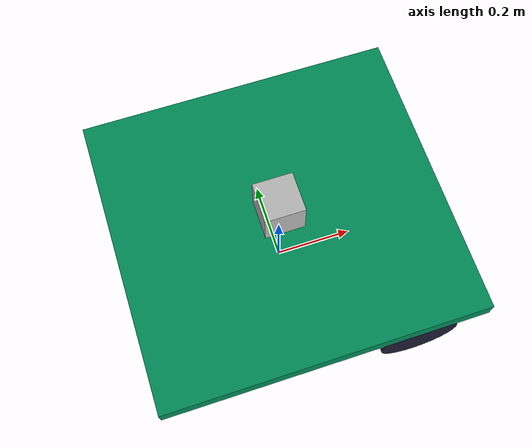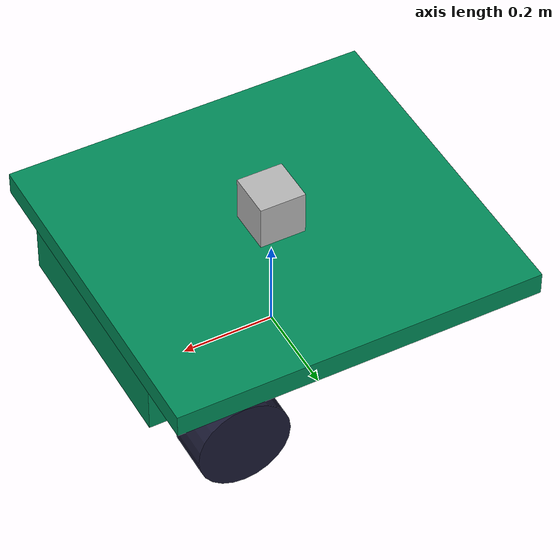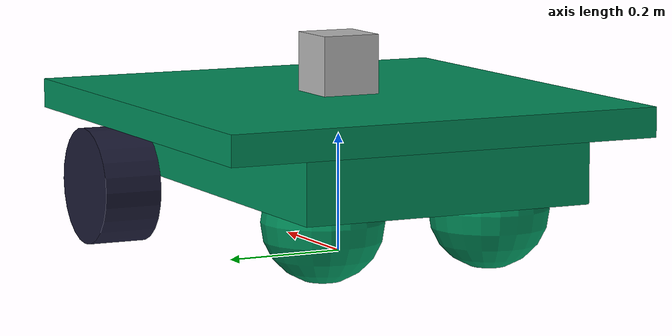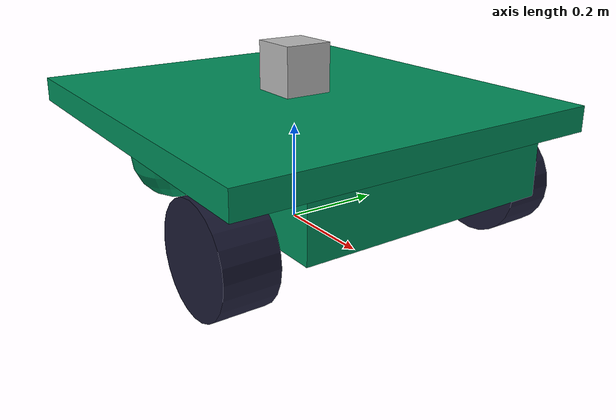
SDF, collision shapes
<?xml version="1.0" ?>
<sdf version="1.5">
  <model name="rm3_robot">
    <static>false</static>
    <link name="chassis">
      <pose>0 0 0.17 0 0 0</pose>
      <inertial>
        <mass>5.67</mass>
        <inertia>
          <ixx>0.07</ixx>
          <iyy>0.08</iyy>
          <izz>0.10</izz>
          <ixy>0</ixy>
          <ixz>0</ixz>
          <iyz>0</iyz>
        </inertia>
      </inertial>
      <collision name="collision">
        <geometry>
          <box>
            <size>0.8 0.5 0.1</size>
          </box>
        </geometry>
      </collision>
      <collision name="top_collision">
        <pose>0 0 0.075 0 0 0</pose>
        <geometry>
          <box>
            <size>0.8 0.75 0.05</size>
          </box>
        </geometry>
      </collision>
      <collision name="right_castor_collision">
        <pose>-0.25 -0.15 -0.07 0 0 0</pose>
        <geometry>
          <sphere>
            <radius>0.1</radius>
          </sphere>
        </geometry>
        <surface>
          <friction>
            <ode>
              <mu>0</mu>
              <mu2>0</mu2>
              <slip1>1.0</slip1>
              <slip2>1.0</slip2>
            </ode>
          </friction>
        </surface>
      </collision>
      <collision name="left_castor_collision">
        <pose>-0.25 0.15 -0.07 0 0 0</pose>
        <geometry>
          <sphere>
            <radius>0.1</radius>
          </sphere>
        </geometry>
        <surface>
          <friction>
            <ode>
              <mu>0</mu>
              <mu2>0</mu2>
              <slip1>1.0</slip1>
              <slip2>1.0</slip2>
            </ode>
          </friction>
        </surface>
      </collision>
      <visual name="visual">
        <geometry>
          <box>
            <size>0.8 0.5 0.1</size>
          </box>
        </geometry>
        <material>
            <ambient>0 0.55 0.35 1</ambient>
            <diffuse>0 0.55 0.35 1</diffuse>
            <specular>0 0 0 0</specular>
            <emissive>0 0 0 1</emissive>
        </material>
      </visual>
      <visual name="top_visual">
        <pose>0 0 0.075 0 0 0</pose>
        <geometry>
          <box>
            <size>0.8 0.75 0.05</size>
          </box>
        </geometry>
	<material>
            <ambient>1 1 0.4 1</ambient>
            <diffuse>1 1 0.4 1</diffuse>
            <specular>0 0 0 0</specular>
            <emissive>0 0 0 1</emissive>
        </material>
      </visual>
      <visual name="right_castor_visual">
        <pose>-0.25 -0.15 -0.07 0 0 0</pose>
        <geometry>
          <sphere>
            <radius>0.1</radius>
          </sphere>
        </geometry>
        <material>
            <ambient>0.1 0.1 0.1 1</ambient>
            <diffuse>0.1 0.1 0.2 1</diffuse>
            <specular>0 0 0 0</specular>
            <emissive>0 0 0 1</emissive>
        </material>
      </visual>
      <visual name="left_castor_visual">
        <pose>-0.25 0.15 -0.07 0 0 0</pose>
        <geometry>
          <sphere>
            <radius>0.1</radius>
          </sphere>
        </geometry>
        <material>
            <ambient>0.1 0.1 0.1 1</ambient>
            <diffuse>0.1 0.1 0.2 1</diffuse>
            <specular>0 0 0 0</specular>
            <emissive>0 0 0 1</emissive>
        </material>
      </visual>
    </link>
    <link name="right_wheel">
      <pose>0.25 -0.31 0.1 0 1.5707 1.5707</pose>
      <inertial>
        <mass>1.5</mass>
        <inertia>
          <ixx>0.0051</ixx>
          <iyy>0.0051</iyy>
          <izz>0.0090</izz>
          <ixy>0</ixy>
          <ixz>0</ixz>
          <iyz>0</iyz>
        </inertia>
      </inertial>
      <collision name="collision">
        <geometry>
          <cylinder>
            <radius>0.1</radius>
            <length>0.1</length>
          </cylinder>
        </geometry>
        <surface>
          <friction>
            <ode>
              <mu>1.0</mu>
              <mu2>1.0</mu2>
              <slip1>0.0</slip1>
              <slip2>0.0</slip2>
            </ode>
          </friction>
            <contact>
            <ode>
              <soft_cfm>0</soft_cfm>
              <soft_erp>0.3</soft_erp>
              <kp>1e+10</kp>
              <kd>10</kd>
              <max_vel>1.0</max_vel>
              <min_depth>0.01</min_depth>
            </ode>
          </contact>
        </surface>
      </collision>
      <visual name="visual">
        <geometry>
          <cylinder>
            <radius>0.1</radius>
            <length>0.1</length>
          </cylinder>
        </geometry>
        <material>
            <ambient>0.1 0.1 0.1 1</ambient>
            <diffuse>0.1 0.1 0.2 1</diffuse>
            <specular>0 0 0 0</specular>
            <emissive>0 0 0 1</emissive>
          </material>
      </visual>

    </link>
    <link name="left_wheel">
      <pose>0.25 0.31 0.1 0 1.5707 1.5707</pose>
      <inertial>
        <mass>1.5</mass>
        <inertia>
          <ixx>0.0051</ixx>
          <iyy>0.0051</iyy>
          <izz>0.0090</izz>
          <ixy>0</ixy>
          <ixz>0</ixz>
          <iyz>0</iyz>
        </inertia>
      </inertial>
      <collision name="collision">
        <geometry>
          <cylinder>
            <radius>0.1</radius>
            <length>0.1</length>
          </cylinder>
        </geometry>
        <surface>
          <friction>
            <ode>
              <mu>1.0</mu>
              <mu2>1.0</mu2>
              <slip1>0.0</slip1>
              <slip2>0.0</slip2>
            </ode>
          </friction>
            <contact>
            <ode>
              <soft_cfm>0</soft_cfm>
              <soft_erp>0.3</soft_erp>
              <kp>1e+10</kp>
              <kd>10</kd>
              <max_vel>1.0</max_vel>
              <min_depth>0.01</min_depth>
            </ode>
          </contact>
        </surface>
      </collision>
      <visual name="visual">
        <geometry>
          <cylinder>
            <radius>0.1</radius>
            <length>0.1</length>
          </cylinder>
        </geometry>
        <material>
            <ambient>0.1 0.1 0.1 1</ambient>
            <diffuse>0.1 0.1 0.2 1</diffuse>
            <specular>0 0 0 0</specular>
            <emissive>0 0 0 1</emissive>
          </material>
      </visual>
    </link>

  <link name='cam_link'>
  <pose frame=''>0.4 -0 0.3 -0 0.2 -0</pose>
  <inertial>
    <mass>0.1</mass>
    <inertia>
      <ixx>1</ixx>
      <ixy>0</ixy>
      <ixz>0</ixz>
      <iyy>1</iyy>
      <iyz>0</iyz>
      <izz>1</izz>
    </inertia>
    <pose frame=''>0 0 0 0 -0 0</pose>
  </inertial>
  <self_collide>0</self_collide>
  <kinematic>0</kinematic>
  <sensor name='camera1' type='camera'>
    <camera name="head">
      <horizontal_fov>1.3962634</horizontal_fov>
      <image>
        <width>800</width>
        <height>800</height>
        <format>R8G8B8</format>
      </image>
      <clip>
        <near>0.02</near>
        <far>300</far>
      </clip>
    </camera>
    <always_on>1</always_on>
    <update_rate>30</update_rate>
    <visualize>1</visualize>
    <plugin name="camera_controller" filename="libgazebo_ros_camera.so">
    <alwaysOn>true</alwaysOn>
    <updateRate>0.0</updateRate>
    <cameraName>rm3/camera</cameraName>
    <imageTopicName>image_raw</imageTopicName>
    <cameraInfoTopicName>camera_info</cameraInfoTopicName>
    <frameName>camera_link</frameName>
    <hackBaseline>0.07</hackBaseline>
    <distortionK1>0.0</distortionK1>
    <distortionK2>0.0</distortionK2>
    <distortionK3>0.0</distortionK3>
    <distortionT1>0.0</distortionT1>
    <distortionT2>0.0</distortionT2>
  </plugin>
  </sensor>
  </link>
 <joint type="fixed" name="Camera_hinge">
      <pose>0 2 0 0 0 0</pose>
      <child>cam_link</child>
      <parent>chassis</parent>
      <axis>
        <xyz>0 1 0</xyz>
        <use_parent_model_frame>true</use_parent_model_frame>
      </axis>
    </joint>

    <joint type="revolute" name="left_wheel_hinge">
      <pose>0 0 -0.03 0 0 0</pose>
      <child>left_wheel</child>
      <parent>chassis</parent>
      <axis>
        <xyz>0 1 0</xyz>
        <use_parent_model_frame>true</use_parent_model_frame>
      </axis>
    </joint>
    <joint type="revolute" name="right_wheel_hinge">
      <pose>0 0 0.03 0 0 0</pose>
      <child>right_wheel</child>
      <parent>chassis</parent>
      <axis>
        <xyz>0 1 0</xyz>
        <use_parent_model_frame>true</use_parent_model_frame>
      </axis>
    </joint>

<!--lidar-->
        <link name="hokuyo_link">
          <pose>0 0 0.02 0 0 0</pose>
          <collision name="collision">
            <pose>0 0 0.3 0 0 0</pose>
            <geometry>
              <box>
                <size>0.1 0.1 0.1</size>
              </box>
            </geometry>
          </collision>
          <visual name="visual">
            <pose>0 0 0.27 0 0 0</pose>
            <geometry>
              <mesh>
                <uri>model://hokuyo/meshes/hokuyo.dae</uri>
              </mesh>
            </geometry>
          </visual>
          <inertial>
            <mass>0.016</mass>
            <inertia>
               <ixx>0.0001</ixx>
               <ixy>0</ixy>
               <ixz>0</ixz>
               <iyy>0.0001</iyy>
               <iyz>0</iyz>
               <izz>0.0001</izz>
            </inertia>
          </inertial>

          <sensor type="ray" name="laser">
            <pose>0 0 0.3 0 0 1.57</pose>
            <visualize>true</visualize>
            <update_rate>10</update_rate>
            <ray>
              <scan>
                <horizontal>
                  <samples>1024</samples>
                  <resolution>1</resolution>
                  <min_angle>-3.141593</min_angle>
                  <max_angle>3.141593</max_angle>
                </horizontal>
              </scan>
              <range>
                <min>0.1</min>
                <max>30</max>
                <resolution>0.1</resolution>
              </range>
           </ray>
            <plugin name="hokuyo_node" filename="libgazebo_ros_laser.so">
              <robotNamespace></robotNamespace>
              <topicName>/spur/laser/scan</topicName>
              <frameName>/hokuyo_sensor_link</frameName>
            </plugin>
          </sensor>
        </link>

        <joint name="hokuyo_joint" type="fixed">
          <pose>0 0 0 0 0 0</pose>
          <parent>chassis</parent>
          <child>hokuyo_link</child>
        </joint>
    <plugin name="differential_drive_controller" filename="libgazebo_ros_diff_drive.so">

      <updateRate>10.0</updateRate>

      <!-- wheels -->
      <leftJoint>left_wheel_hinge</leftJoint>
      <rightJoint>right_wheel_hinge</rightJoint>

      <!-- kinematics-->
      <wheelSeparation>0.5</wheelSeparation>
      <wheelDiameter>0.2</wheelDiameter>
      <wheelAcceleration>0.0</wheelAcceleration>
      <wheelTorque>2</wheelTorque>

      <!-- Odometry-->
      <commandTopic>cmd_vel</commandTopic>
      <odometryTopic>odom</odometryTopic>
      <odometryFrame>odom</odometryFrame>
      <robotBaseFrame>chassis</robotBaseFrame>
      <odometrySource>world</odometrySource>
      <publishWheelTF>true</publishWheelTF>
      <publishOdom>true</publishOdom>
      <publishWheelJointState>true</publishWheelJointState>
      <legacyMode>false</legacyMode>
      <publishTf>true</publishTf>
      <publishOdomTF>True</publishOdomTF>

    </plugin>

    </model>

</sdf>
